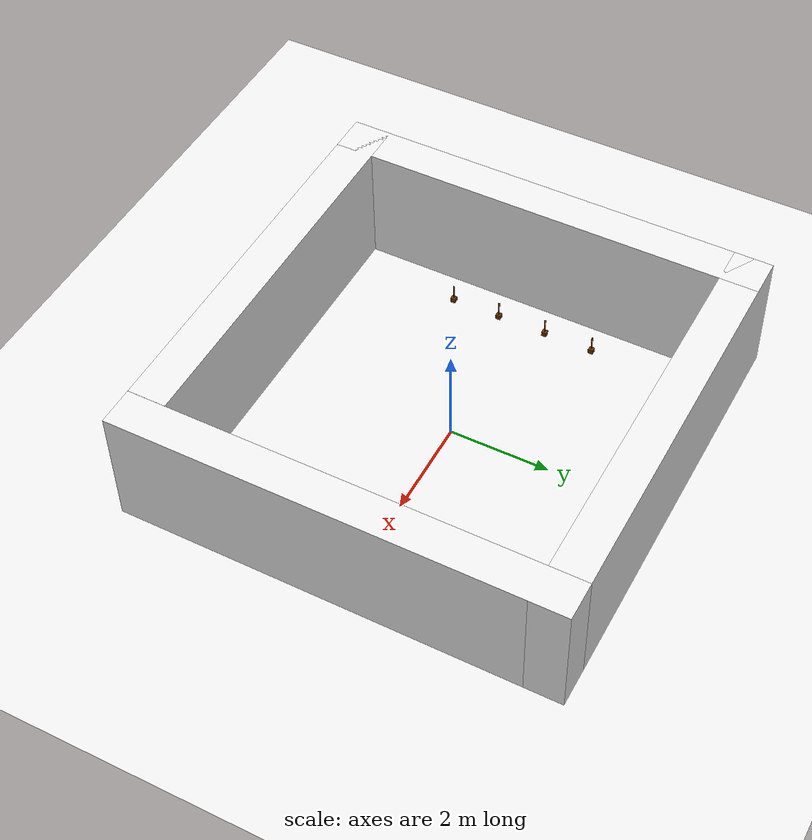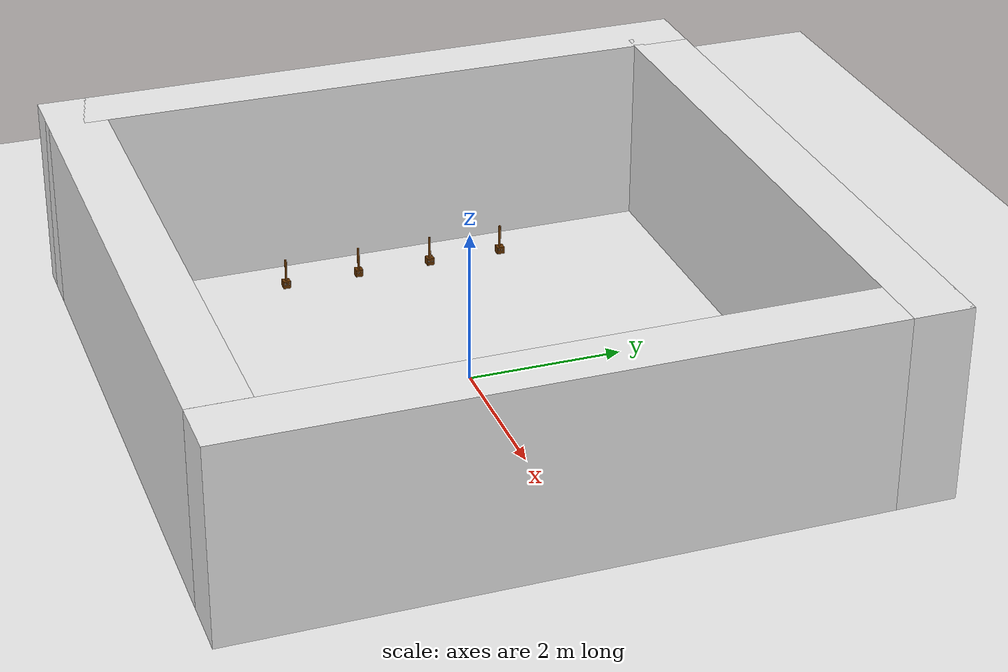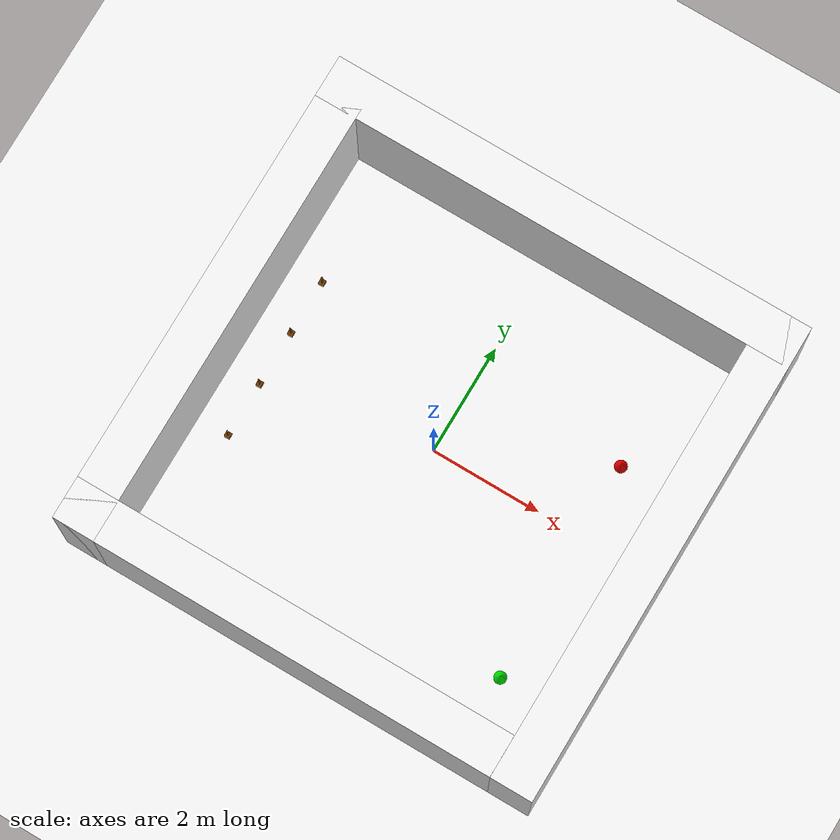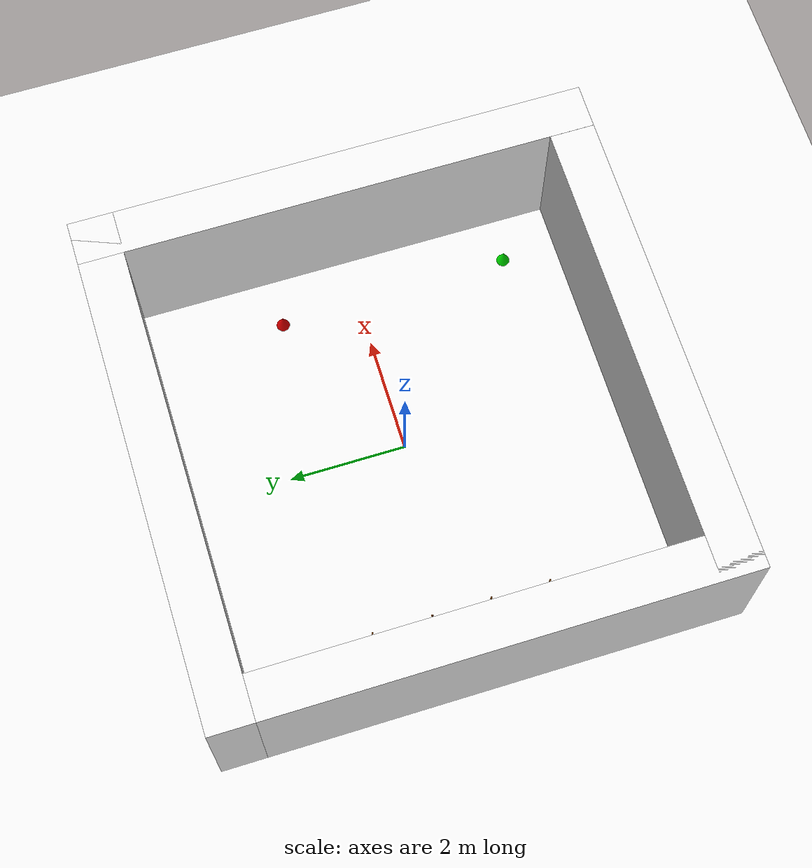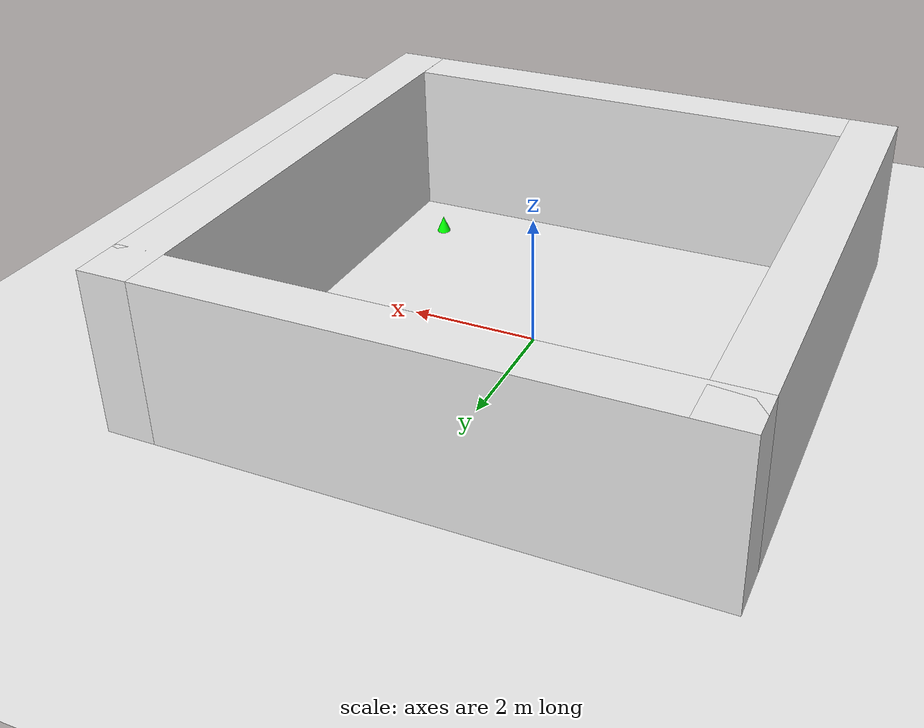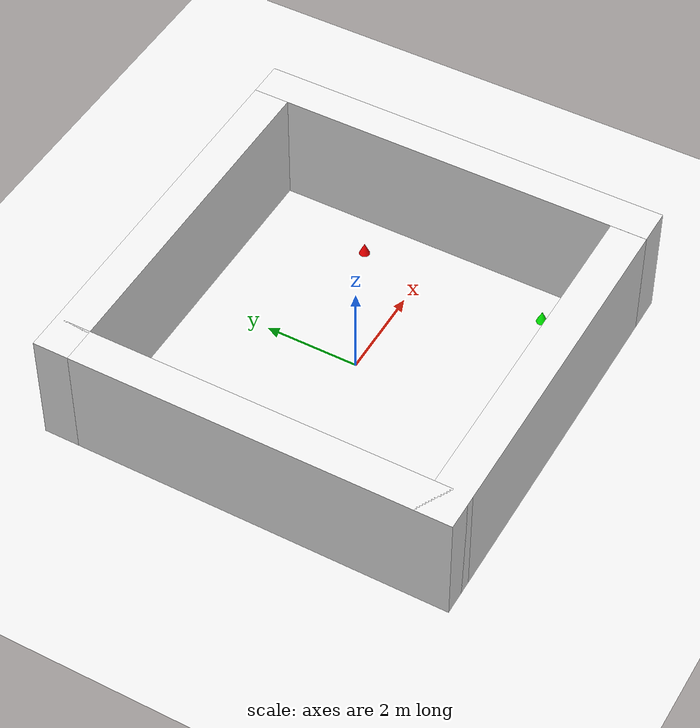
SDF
<sdf version="1.6">
 <world name="default">
  <model name="ground_plane">
   <static>1</static>
   <link name="link">
    <collision name="collision">
     <geometry><plane><normal>0 0 1</normal><size>100 100</size></plane></geometry>
     <surface>
      <contact><collide_bitmask>65535</collide_bitmask></contact>
      <friction><ode><mu>100</mu><mu2>50</mu2></ode></friction>
     </surface>
    </collision>
    <visual name="visual">
     <cast_shadows>0</cast_shadows>
     <geometry><plane><normal>0 0 1</normal><size>100 100</size></plane></geometry>
     <material>
      <script><uri>file://media/materials/scripts/gazebo.material</uri><name>Gazebo/White</name></script>
     </material>
    </visual>
   </link>
  </model>
  <model name="m1">
   <link name="Wall_0">
    <collision name="Wall_0_Collision">
     <geometry><box><size>8.76 0.76 2.5</size></box></geometry>
     <pose>0 0 1.25 0 -0 0</pose>
    </collision>
    <visual name="Wall_0_Visual">
     <pose>0 0 1.25 0 -0 0</pose>
     <geometry><box><size>8.76 0.76 2.5</size></box></geometry>
     <material>
      <script><uri>file://media/materials/scripts/gazebo.material</uri><name>Gazebo/White</name></script>
      <ambient>1 1 1 1</ambient>
     </material>
     <meta><layer>0</layer></meta>
    </visual>
    <pose>-4 0 0 0 -0 -1.5708</pose>
   </link>
   <link name="Wall_2">
    <collision name="Wall_2_Collision">
     <geometry><box><size>8.76 0.76 2.5</size></box></geometry>
     <pose>0 0 1.25 0 -0 0</pose>
    </collision>
    <visual name="Wall_2_Visual">
     <pose>0 0 1.25 0 -0 0</pose>
     <geometry><box><size>8.76 0.76 2.5</size></box></geometry>
     <material>
      <script><uri>file://media/materials/scripts/gazebo.material</uri><name>Gazebo/White</name></script>
      <ambient>1 1 1 1</ambient>
     </material>
     <meta><layer>0</layer></meta>
    </visual>
    <pose>0 4 0 0 -0 3.14159</pose>
   </link>
   <link name="Wall_4">
    <collision name="Wall_4_Collision">
     <geometry><box><size>8.76 0.76 2.5</size></box></geometry>
     <pose>0 0 1.25 0 -0 0</pose>
    </collision>
    <visual name="Wall_4_Visual">
     <pose>0 0 1.25 0 -0 0</pose>
     <geometry><box><size>8.76 0.76 2.5</size></box></geometry>
     <material>
      <script><uri>file://media/materials/scripts/gazebo.material</uri><name>Gazebo/White</name></script>
      <ambient>1 1 1 1</ambient>
     </material>
     <meta><layer>0</layer></meta>
    </visual>
    <pose>4 0 0 0 -0 1.5708</pose>
   </link>
   <link name="Wall_6">
    <collision name="Wall_6_Collision">
     <geometry><box><size>7.999 0.76 2.5</size></box></geometry>
     <pose>0 0 1.25 0 -0 0</pose>
    </collision>
    <visual name="Wall_6_Visual">
     <pose>0 0 1.25 0 -0 0</pose>
     <geometry><box><size>7.999 0.76 2.5</size></box></geometry>
     <material>
      <script><uri>file://media/materials/scripts/gazebo.material</uri><name>Gazebo/White</name></script>
      <ambient>1 1 1 1</ambient>
     </material>
     <meta><layer>0</layer></meta>
    </visual>
    <pose>-0.3805 -4 0 0 -0 0</pose>
   </link>
   <static>1</static>
  </model>
  <model name="cone_green">
   <link name="link_5">
    <inertial>
     <mass>1</mass>
     <inertia>
      <ixx>0.166667</ixx>
      <ixy>0</ixy>
      <ixz>0</ixz>
      <iyy>0.166667</iyy>
      <iyz>0</iyz>
      <izz>0.166667</izz>
     </inertia>
    </inertial>
    <pose>0.065828 0.108469 0 0 -0 0</pose>
    <visual name="visual">
     <geometry>
      <mesh><uri>/home/pranavkdas/simulation_ws/src/hexbot/shapes/cone.stl</uri><scale>1 1 1</scale></mesh>
     </geometry>
     <material>
      <lighting>1</lighting>
      <ambient>0 1 0 1</ambient>
      <diffuse>0 1 0 1</diffuse>
      <specular>0 1 0 1</specular>
      <emissive>0 1 0 1</emissive>
      <script><name>ModelPreview_18::link_5::visual_MATERIAL_</name><uri>__default__</uri></script>
      <shader type="vertex"><normal_map>__default__</normal_map></shader>
     </material>
    </visual>
    <collision name="collision">
     <geometry>
      <mesh><uri>/home/pranavkdas/simulation_ws/src/hexbot/shapes/cone.stl</uri><scale>1 1 1</scale></mesh>
     </geometry>
     <surface>
      <friction>
       <ode><mu>1</mu><mu2>1</mu2><fdir1>0 0 0</fdir1><slip1>0</slip1><slip2>0</slip2></ode>
       <torsional>
        <coefficient>1</coefficient>
        <patch_radius>0</patch_radius>
        <surface_radius>0</surface_radius>
        <use_patch_radius>1</use_patch_radius>
        <ode><slip>0</slip></ode>
       </torsional>
      </friction>
      <bounce><restitution_coefficient>0</restitution_coefficient><threshold>1e+06</threshold></bounce>
      <contact>
       <collide_without_contact>0</collide_without_contact>
       <collide_without_contact_bitmask>1</collide_without_contact_bitmask>
       <collide_bitmask>1</collide_bitmask>
       <ode>
        <soft_cfm>0</soft_cfm>
        <soft_erp>0.2</soft_erp>
        <kp>1e+13</kp>
        <kd>1</kd>
        <max_vel>0.01</max_vel>
        <min_depth>0</min_depth>
       </ode>
       <bullet>
        <split_impulse>1</split_impulse>
        <split_impulse_penetration_threshold>-0.01</split_impulse_penetration_threshold>
        <soft_cfm>0</soft_cfm>
        <soft_erp>0.2</soft_erp>
        <kp>1e+13</kp>
        <kd>1</kd>
       </bullet>
      </contact>
     </surface>
    </collision>
   </link>
   <static>0</static>
   <pose>2.78427 -2.78108 -5e-06 -2.1e-05 -1.5e-05 0</pose>
  </model>
  <model name="cone">
   <link name="link_5">
    <inertial>
     <mass>1</mass>
     <inertia>
      <ixx>0.166667</ixx>
      <ixy>0</ixy>
      <ixz>0</ixz>
      <iyy>0.166667</iyy>
      <iyz>0</iyz>
      <izz>0.166667</izz>
     </inertia>
    </inertial>
    <pose>0.065828 0.108469 0 0 -0 0</pose>
    <visual name="visual">
     <geometry>
      <mesh><uri>/home/pranavkdas/simulation_ws/src/hexbot/shapes/cone.stl</uri><scale>1 1 1</scale></mesh>
     </geometry>
     <material>
      <lighting>1</lighting>
      <ambient>1 0 0 1</ambient>
      <diffuse>1 0 0 1</diffuse>
      <specular>1 0 0 1</specular>
      <emissive>1 0 0 1</emissive>
      <script><name>ModelPreview_4::link_5::visual_MATERIAL_</name><uri>__default__</uri></script>
     </material>
    </visual>
    <collision name="collision">
     <geometry>
      <mesh><uri>/home/pranavkdas/simulation_ws/src/hexbot/shapes/cone.stl</uri><scale>1 1 1</scale></mesh>
     </geometry>
     <surface>
      <friction>
       <ode><mu>1</mu><mu2>1</mu2><fdir1>0 0 0</fdir1><slip1>0</slip1><slip2>0</slip2></ode>
       <torsional>
        <coefficient>1</coefficient>
        <patch_radius>0</patch_radius>
        <surface_radius>0</surface_radius>
        <use_patch_radius>1</use_patch_radius>
        <ode><slip>0</slip></ode>
       </torsional>
      </friction>
      <bounce><restitution_coefficient>0</restitution_coefficient><threshold>1e+06</threshold></bounce>
      <contact>
       <collide_without_contact>0</collide_without_contact>
       <collide_without_contact_bitmask>1</collide_without_contact_bitmask>
       <collide_bitmask>1</collide_bitmask>
       <ode>
        <soft_cfm>0</soft_cfm>
        <soft_erp>0.2</soft_erp>
        <kp>1e+13</kp>
        <kd>1</kd>
        <max_vel>0.01</max_vel>
        <min_depth>0</min_depth>
       </ode>
       <bullet>
        <split_impulse>1</split_impulse>
        <split_impulse_penetration_threshold>-0.01</split_impulse_penetration_threshold>
        <soft_cfm>0</soft_cfm>
        <soft_erp>0.2</soft_erp>
        <kp>1e+13</kp>
        <kd>1</kd>
       </bullet>
      </contact>
     </surface>
    </collision>
   </link>
   <static>0</static>
   <pose>2.71277 1.24239 3e-06 -1.3e-05 0 0</pose>
  </model>
  <model name="stands">
   <link name="stand1">
    <inertial>
     <pose>0.021437 1.69593 0.021437 0 -0 0</pose>
     <mass>700.2</mass>
     <inertia><ixx>737.625</ixx><ixy>0</ixy><ixz>0</ixz><iyy>1.44047</iyy><iyz>0</iyz><izz>737.891</izz></inertia>
    </inertial>
    <visual name="stand1_fixed_joint_lump__red_name_visual_1">
     <pose>0.05 -0.035 0.05 1.5707 0 1.5707</pose>
     <geometry>
      <mesh><scale>1 1 1</scale><uri>/home/pranavkdas/simulation_ws/src/hexbot/shapes/red.stl</uri></mesh>
     </geometry>
     <material>
      <script><name>Gazebo/Black</name><uri>file://media/materials/scripts/gazebo.material</uri></script>
      <shader type="vertex"><normal_map>__default__</normal_map></shader>
      <ambient>0 0 0 1</ambient>
      <diffuse>0 0 0 1</diffuse>
      <specular>0.1 0.1 0.1 1</specular>
      <emissive>0 0 0 1</emissive>
     </material>
    </visual>
    <visual name="stand1_fixed_joint_lump__red_name_3_visual_5">
     <pose>0.05 1.955 0.05 1.5707 0 1.5707</pose>
     <geometry>
      <mesh>
       <scale>0.45 0.45 0.45</scale>
       <uri>/home/pranavkdas/simulation_ws/src/hexbot/shapes/navy blue.stl</uri>
      </mesh>
     </geometry>
     <material>
      <script><name>Gazebo/Black</name><uri>file://media/materials/scripts/gazebo.material</uri></script>
      <shader type="vertex"><normal_map>__default__</normal_map></shader>
      <ambient>0 0 0 1</ambient>
      <diffuse>0 0 0 1</diffuse>
      <specular>0.1 0.1 0.1 1</specular>
      <emissive>0 0 0 1</emissive>
     </material>
    </visual>
    <visual name="stand1_fixed_joint_lump__stand3_visual_4">
     <pose>0 2 0 0 -0 0</pose>
     <geometry>
      <mesh><scale>1 1 1</scale><uri>/home/pranavkdas/simulation_ws/src/hexbot/shapes/base.stl</uri></mesh>
     </geometry>
     <material>
      <script><name>lighting</name><uri>file://media/materials/scripts/gazebo.material</uri></script>
      <shader type="vertex"><normal_map>__default__</normal_map></shader>
      <ambient>0.4 0.2 0 1</ambient>
      <diffuse>0.4 0.2 0 1</diffuse>
      <specular>0.4 0.2 0 1</specular>
      <emissive>0.4 0.2 0 1</emissive>
     </material>
    </visual>
    <visual name="stand1_fixed_joint_lump__stand4_visual_6">
     <pose>0 3 0 0 -0 0</pose>
     <geometry>
      <mesh><scale>1 1 1</scale><uri>/home/pranavkdas/simulation_ws/src/hexbot/shapes/base.stl</uri></mesh>
     </geometry>
     <material>
      <script><name>lighting</name><uri>file://media/materials/scripts/gazebo.material</uri></script>
      <shader type="vertex"><normal_map>__default__</normal_map></shader>
      <ambient>0.4 0.2 0 1</ambient>
      <diffuse>0.4 0.2 0 1</diffuse>
      <specular>0.4 0.2 0 1</specular>
      <emissive>0.4 0.2 0 1</emissive>
     </material>
    </visual>
    <visual name="stand1_visual">
     <geometry>
      <mesh><scale>1 1 1</scale><uri>/home/pranavkdas/simulation_ws/src/hexbot/shapes/base.stl</uri></mesh>
     </geometry>
     <material>
      <script><name>lighting</name><uri>file://media/materials/scripts/gazebo.material</uri></script>
      <ambient>0.4 0.2 0 0</ambient>
      <shader type="vertex"><normal_map>__default__</normal_map></shader>
      <diffuse>0.4 0.2 0 1</diffuse>
      <specular>0.4 0.2 0 1</specular>
      <emissive>0.4 0.2 0 1</emissive>
     </material>
    </visual>
    <visual name="stand1_fixed_joint_lump__red_name_4_visual_7">
     <pose>0.05 2.96 0.05 1.5707 0 1.5707</pose>
     <geometry>
      <mesh><scale>0.6 0.6 0.6</scale><uri>/home/pranavkdas/simulation_ws/src/hexbot/shapes/green.stl</uri></mesh>
     </geometry>
     <material>
      <script><name>Gazebo/Black</name><uri>file://media/materials/scripts/gazebo.material</uri></script>
      <shader type="vertex"><normal_map>__default__</normal_map></shader>
      <ambient>0 0 0 1</ambient>
      <diffuse>0 0 0 1</diffuse>
      <specular>0.1 0.1 0.1 1</specular>
      <emissive>0 0 0 1</emissive>
     </material>
    </visual>
    <visual name="stand1_fixed_joint_lump__red_name_2_visual_3">
     <pose>0.05 0.96 0.05 1.5707 0 1.5707</pose>
     <geometry>
      <mesh><scale>0.6 0.6 0.6</scale><uri>/home/pranavkdas/simulation_ws/src/hexbot/shapes/yellow.stl</uri></mesh>
     </geometry>
     <material>
      <script><name>Gazebo/Black</name><uri>file://media/materials/scripts/gazebo.material</uri></script>
      <shader type="vertex"><normal_map>__default__</normal_map></shader>
      <ambient>0 0 0 1</ambient>
      <diffuse>0 0 0 1</diffuse>
      <specular>0.1 0.1 0.1 1</specular>
      <emissive>0 0 0 1</emissive>
     </material>
    </visual>
    <visual name="stand1_fixed_joint_lump__stand2_visual_2">
     <pose>0 1 0 0 -0 0</pose>
     <geometry>
      <mesh><scale>1 1 1</scale><uri>/home/pranavkdas/simulation_ws/src/hexbot/shapes/base.stl</uri></mesh>
     </geometry>
     <material>
      <script><name>lighting</name><uri>file://media/materials/scripts/gazebo.material</uri></script>
      <shader type="vertex"><normal_map>__default__</normal_map></shader>
      <ambient>0.4 0.2 0 1</ambient>
      <diffuse>0.4 0.2 0 1</diffuse>
      <specular>0.4 0.2 0 1</specular>
      <emissive>0.4 0.2 0 1</emissive>
     </material>
    </visual>
    <collision name="stand1_fixed_joint_lump__collision_chassis_collision">
     <pose>0 0 0.1 0 -0 0</pose>
     <geometry>
      <mesh><uri>/home/pranavkdas/simulation_ws/src/hexbot/shapes/base.stl</uri><scale>1 1 1</scale></mesh>
     </geometry>
     <surface>
      <friction>
       <ode><mu>1</mu><mu2>1</mu2><fdir1>0 0 0</fdir1><slip1>0</slip1><slip2>0</slip2></ode>
       <torsional>
        <coefficient>1</coefficient>
        <patch_radius>0</patch_radius>
        <surface_radius>0</surface_radius>
        <use_patch_radius>1</use_patch_radius>
        <ode><slip>0</slip></ode>
       </torsional>
      </friction>
      <bounce><restitution_coefficient>0</restitution_coefficient><threshold>1e+06</threshold></bounce>
      <contact>
       <collide_without_contact>0</collide_without_contact>
       <collide_without_contact_bitmask>1</collide_without_contact_bitmask>
       <collide_bitmask>1</collide_bitmask>
       <ode>
        <soft_cfm>0</soft_cfm>
        <soft_erp>0.2</soft_erp>
        <kp>1e+13</kp>
        <kd>1</kd>
        <max_vel>0.01</max_vel>
        <min_depth>0</min_depth>
       </ode>
       <bullet>
        <split_impulse>1</split_impulse>
        <split_impulse_penetration_threshold>-0.01</split_impulse_penetration_threshold>
        <soft_cfm>0</soft_cfm>
        <soft_erp>0.2</soft_erp>
        <kp>1e+13</kp>
        <kd>1</kd>
       </bullet>
      </contact>
     </surface>
    </collision>
    <collision name="stand1_fixed_joint_lump__collision_chassis_collision_1">
     <pose>0.05 -0.035 0.05 1.5707 0 1.5707</pose>
     <geometry>
      <mesh><uri>/home/pranavkdas/simulation_ws/src/hexbot/shapes/red.stl</uri><scale>1 1 1</scale></mesh>
     </geometry>
     <surface>
      <friction>
       <ode><mu>1</mu><mu2>1</mu2><fdir1>0 0 0</fdir1><slip1>0</slip1><slip2>0</slip2></ode>
       <torsional>
        <coefficient>1</coefficient>
        <patch_radius>0</patch_radius>
        <surface_radius>0</surface_radius>
        <use_patch_radius>1</use_patch_radius>
        <ode><slip>0</slip></ode>
       </torsional>
      </friction>
      <bounce><restitution_coefficient>0</restitution_coefficient><threshold>1e+06</threshold></bounce>
      <contact>
       <collide_without_contact>0</collide_without_contact>
       <collide_without_contact_bitmask>1</collide_without_contact_bitmask>
       <collide_bitmask>1</collide_bitmask>
       <ode>
        <soft_cfm>0</soft_cfm>
        <soft_erp>0.2</soft_erp>
        <kp>1e+13</kp>
        <kd>1</kd>
        <max_vel>0.01</max_vel>
        <min_depth>0</min_depth>
       </ode>
       <bullet>
        <split_impulse>1</split_impulse>
        <split_impulse_penetration_threshold>-0.01</split_impulse_penetration_threshold>
        <soft_cfm>0</soft_cfm>
        <soft_erp>0.2</soft_erp>
        <kp>1e+13</kp>
        <kd>1</kd>
       </bullet>
      </contact>
     </surface>
    </collision>
    <collision name="stand1_fixed_joint_lump__collision_chassis_collision_2">
     <pose>0 1 0.1 0 -0 0</pose>
     <geometry>
      <mesh><uri>/home/pranavkdas/simulation_ws/src/hexbot/shapes/base.stl</uri><scale>1 1 1</scale></mesh>
     </geometry>
     <surface>
      <friction>
       <ode><mu>1</mu><mu2>1</mu2><fdir1>0 0 0</fdir1><slip1>0</slip1><slip2>0</slip2></ode>
       <torsional>
        <coefficient>1</coefficient>
        <patch_radius>0</patch_radius>
        <surface_radius>0</surface_radius>
        <use_patch_radius>1</use_patch_radius>
        <ode><slip>0</slip></ode>
       </torsional>
      </friction>
      <bounce><restitution_coefficient>0</restitution_coefficient><threshold>1e+06</threshold></bounce>
      <contact>
       <collide_without_contact>0</collide_without_contact>
       <collide_without_contact_bitmask>1</collide_without_contact_bitmask>
       <collide_bitmask>1</collide_bitmask>
       <ode>
        <soft_cfm>0</soft_cfm>
        <soft_erp>0.2</soft_erp>
        <kp>1e+13</kp>
        <kd>1</kd>
        <max_vel>0.01</max_vel>
        <min_depth>0</min_depth>
       </ode>
       <bullet>
        <split_impulse>1</split_impulse>
        <split_impulse_penetration_threshold>-0.01</split_impulse_penetration_threshold>
        <soft_cfm>0</soft_cfm>
        <soft_erp>0.2</soft_erp>
        <kp>1e+13</kp>
        <kd>1</kd>
       </bullet>
      </contact>
     </surface>
    </collision>
    <collision name="stand1_fixed_joint_lump__collision_chassis_collision_3">
     <pose>0.05 0.96 0.05 1.5707 0 1.5707</pose>
     <geometry>
      <mesh><uri>/home/pranavkdas/simulation_ws/src/hexbot/shapes/yellow.stl</uri><scale>1 1 1</scale></mesh>
     </geometry>
     <surface>
      <friction>
       <ode><mu>1</mu><mu2>1</mu2><fdir1>0 0 0</fdir1><slip1>0</slip1><slip2>0</slip2></ode>
       <torsional>
        <coefficient>1</coefficient>
        <patch_radius>0</patch_radius>
        <surface_radius>0</surface_radius>
        <use_patch_radius>1</use_patch_radius>
        <ode><slip>0</slip></ode>
       </torsional>
      </friction>
      <bounce><restitution_coefficient>0</restitution_coefficient><threshold>1e+06</threshold></bounce>
      <contact>
       <collide_without_contact>0</collide_without_contact>
       <collide_without_contact_bitmask>1</collide_without_contact_bitmask>
       <collide_bitmask>1</collide_bitmask>
       <ode>
        <soft_cfm>0</soft_cfm>
        <soft_erp>0.2</soft_erp>
        <kp>1e+13</kp>
        <kd>1</kd>
        <max_vel>0.01</max_vel>
        <min_depth>0</min_depth>
       </ode>
       <bullet>
        <split_impulse>1</split_impulse>
        <split_impulse_penetration_threshold>-0.01</split_impulse_penetration_threshold>
        <soft_cfm>0</soft_cfm>
        <soft_erp>0.2</soft_erp>
        <kp>1e+13</kp>
        <kd>1</kd>
       </bullet>
      </contact>
     </surface>
    </collision>
    <collision name="stand1_fixed_joint_lump__collision_chassis_collision_5">
     <pose>0.05 1.955 0.05 1.5707 0 1.5707</pose>
     <geometry>
      <mesh><uri>/home/pranavkdas/simulation_ws/src/hexbot/shapes/navy blue.stl</uri><scale>1 1 1</scale></mesh>
     </geometry>
     <surface>
      <friction>
       <ode><mu>1</mu><mu2>1</mu2><fdir1>0 0 0</fdir1><slip1>0</slip1><slip2>0</slip2></ode>
       <torsional>
        <coefficient>1</coefficient>
        <patch_radius>0</patch_radius>
        <surface_radius>0</surface_radius>
        <use_patch_radius>1</use_patch_radius>
        <ode><slip>0</slip></ode>
       </torsional>
      </friction>
      <bounce><restitution_coefficient>0</restitution_coefficient><threshold>1e+06</threshold></bounce>
      <contact>
       <collide_without_contact>0</collide_without_contact>
       <collide_without_contact_bitmask>1</collide_without_contact_bitmask>
       <collide_bitmask>1</collide_bitmask>
       <ode>
        <soft_cfm>0</soft_cfm>
        <soft_erp>0.2</soft_erp>
        <kp>1e+13</kp>
        <kd>1</kd>
        <max_vel>0.01</max_vel>
        <min_depth>0</min_depth>
       </ode>
       <bullet>
        <split_impulse>1</split_impulse>
        <split_impulse_penetration_threshold>-0.01</split_impulse_penetration_threshold>
        <soft_cfm>0</soft_cfm>
        <soft_erp>0.2</soft_erp>
        <kp>1e+13</kp>
        <kd>1</kd>
       </bullet>
      </contact>
     </surface>
    </collision>
    <collision name="stand1_fixed_joint_lump__collision_chassis_collision_4">
     <pose>0 2 0.1 0 -0 0</pose>
     <geometry>
      <mesh><uri>/home/pranavkdas/simulation_ws/src/hexbot/shapes/base.stl</uri><scale>1 1 1</scale></mesh>
     </geometry>
     <surface>
      <friction>
       <ode><mu>1</mu><mu2>1</mu2><fdir1>0 0 0</fdir1><slip1>0</slip1><slip2>0</slip2></ode>
       <torsional>
        <coefficient>1</coefficient>
        <patch_radius>0</patch_radius>
        <surface_radius>0</surface_radius>
        <use_patch_radius>1</use_patch_radius>
        <ode><slip>0</slip></ode>
       </torsional>
      </friction>
      <bounce><restitution_coefficient>0</restitution_coefficient><threshold>1e+06</threshold></bounce>
      <contact>
       <collide_without_contact>0</collide_without_contact>
       <collide_without_contact_bitmask>1</collide_without_contact_bitmask>
       <collide_bitmask>1</collide_bitmask>
       <ode>
        <soft_cfm>0</soft_cfm>
        <soft_erp>0.2</soft_erp>
        <kp>1e+13</kp>
        <kd>1</kd>
        <max_vel>0.01</max_vel>
        <min_depth>0</min_depth>
       </ode>
       <bullet>
        <split_impulse>1</split_impulse>
        <split_impulse_penetration_threshold>-0.01</split_impulse_penetration_threshold>
        <soft_cfm>0</soft_cfm>
        <soft_erp>0.2</soft_erp>
        <kp>1e+13</kp>
        <kd>1</kd>
       </bullet>
      </contact>
     </surface>
    </collision>
    <collision name="stand1_fixed_joint_lump__collision_chassis_collision_6">
     <pose>0 3 0.1 0 -0 0</pose>
     <geometry>
      <mesh><uri>/home/pranavkdas/simulation_ws/src/hexbot/shapes/base.stl</uri><scale>1 1 1</scale></mesh>
     </geometry>
     <surface>
      <friction>
       <ode><mu>1</mu><mu2>1</mu2><fdir1>0 0 0</fdir1><slip1>0</slip1><slip2>0</slip2></ode>
       <torsional>
        <coefficient>1</coefficient>
        <patch_radius>0</patch_radius>
        <surface_radius>0</surface_radius>
        <use_patch_radius>1</use_patch_radius>
        <ode><slip>0</slip></ode>
       </torsional>
      </friction>
      <bounce><restitution_coefficient>0</restitution_coefficient><threshold>1e+06</threshold></bounce>
      <contact>
       <collide_without_contact>0</collide_without_contact>
       <collide_without_contact_bitmask>1</collide_without_contact_bitmask>
       <collide_bitmask>1</collide_bitmask>
       <ode>
        <soft_cfm>0</soft_cfm>
        <soft_erp>0.2</soft_erp>
        <kp>1e+13</kp>
        <kd>1</kd>
        <max_vel>0.01</max_vel>
        <min_depth>0</min_depth>
       </ode>
       <bullet>
        <split_impulse>1</split_impulse>
        <split_impulse_penetration_threshold>-0.01</split_impulse_penetration_threshold>
        <soft_cfm>0</soft_cfm>
        <soft_erp>0.2</soft_erp>
        <kp>1e+13</kp>
        <kd>1</kd>
       </bullet>
      </contact>
     </surface>
    </collision>
    <collision name="stand1_fixed_joint_lump__collision_chassis_collision_7">
     <pose>0.05 2.96 0.05 1.5707 0 1.5707</pose>
     <geometry>
      <mesh><uri>/home/pranavkdas/simulation_ws/src/hexbot/shapes/green.stl</uri><scale>1 1 1</scale></mesh>
     </geometry>
     <surface>
      <friction>
       <ode><mu>1</mu><mu2>1</mu2><fdir1>0 0 0</fdir1><slip1>0</slip1><slip2>0</slip2></ode>
       <torsional>
        <coefficient>1</coefficient>
        <patch_radius>0</patch_radius>
        <surface_radius>0</surface_radius>
        <use_patch_radius>1</use_patch_radius>
        <ode><slip>0</slip></ode>
       </torsional>
      </friction>
      <bounce><restitution_coefficient>0</restitution_coefficient><threshold>1e+06</threshold></bounce>
      <contact>
       <collide_without_contact>0</collide_without_contact>
       <collide_without_contact_bitmask>1</collide_without_contact_bitmask>
       <collide_bitmask>1</collide_bitmask>
       <ode>
        <soft_cfm>0</soft_cfm>
        <soft_erp>0.2</soft_erp>
        <kp>1e+13</kp>
        <kd>1</kd>
        <max_vel>0.01</max_vel>
        <min_depth>0</min_depth>
       </ode>
       <bullet>
        <split_impulse>1</split_impulse>
        <split_impulse_penetration_threshold>-0.01</split_impulse_penetration_threshold>
        <soft_cfm>0</soft_cfm>
        <soft_erp>0.2</soft_erp>
        <kp>1e+13</kp>
        <kd>1</kd>
       </bullet>
      </contact>
     </surface>
    </collision>
   </link>
   <static>1</static>
   <pose>-3.0408 -1.5157 0 0 -0 0</pose>
  </model>
 </world>
</sdf>
